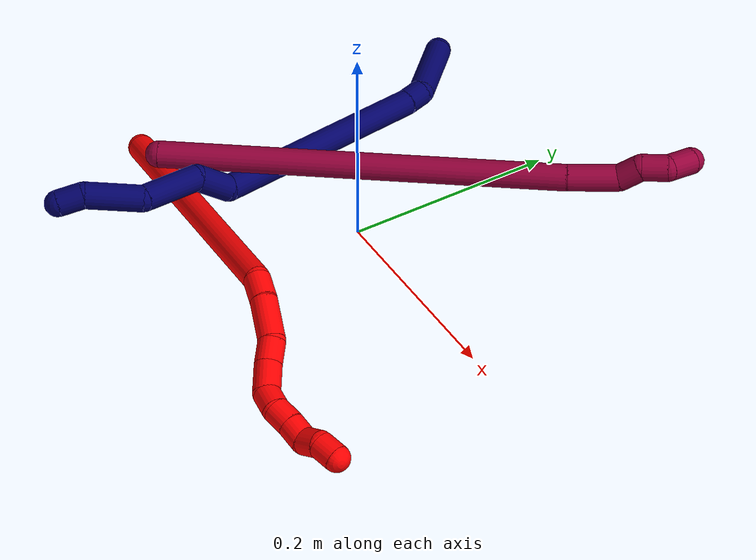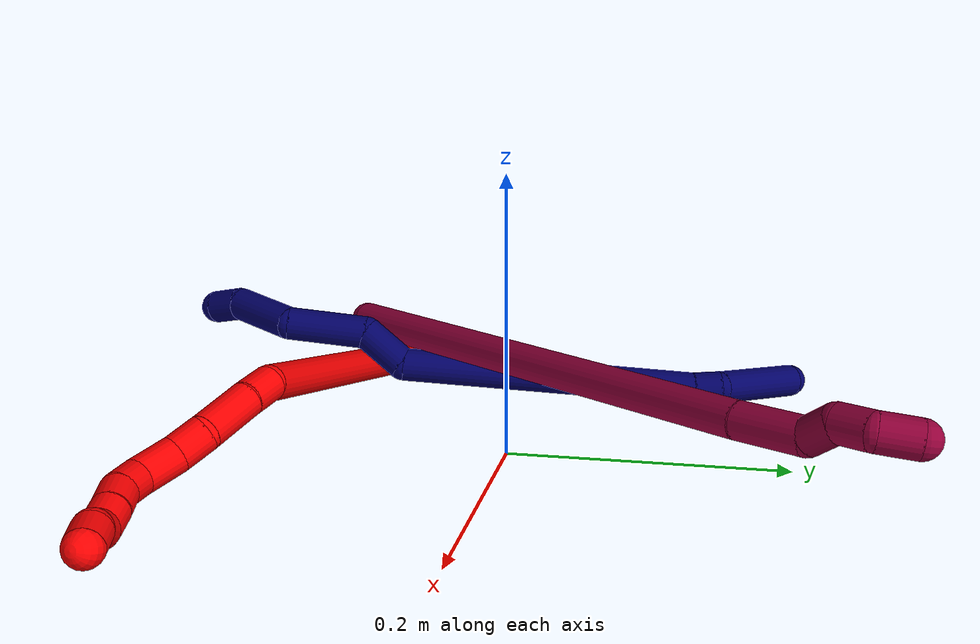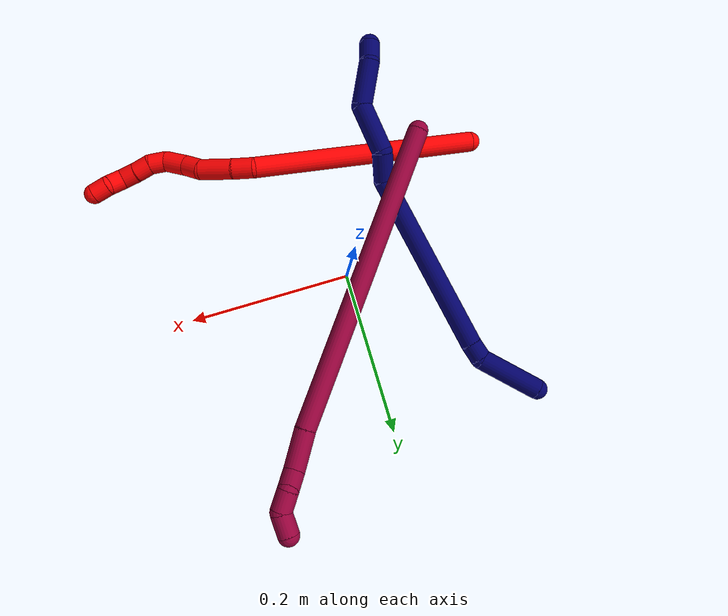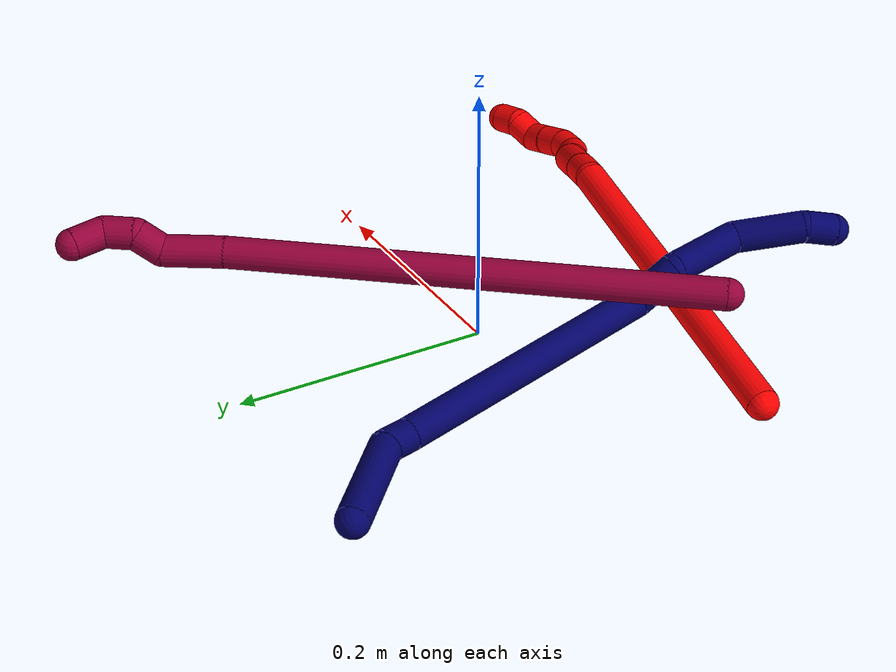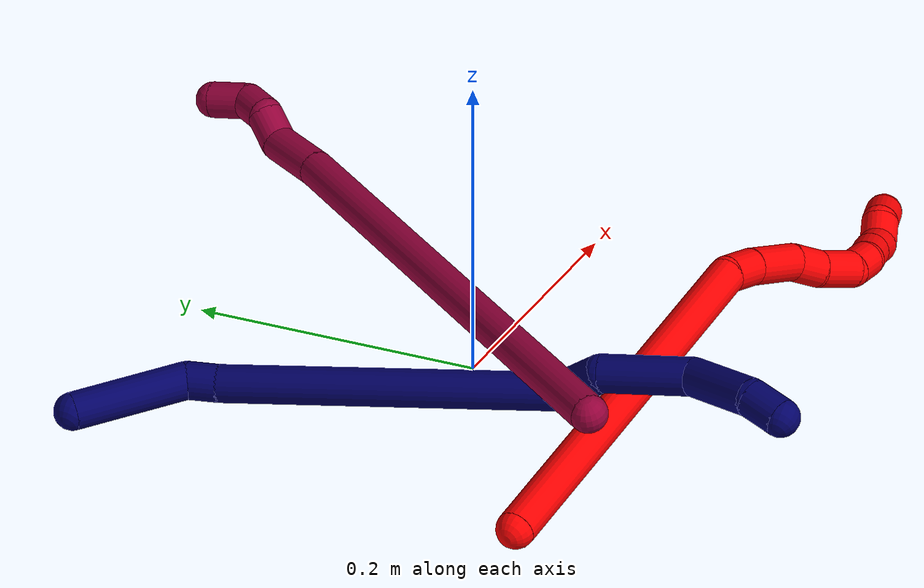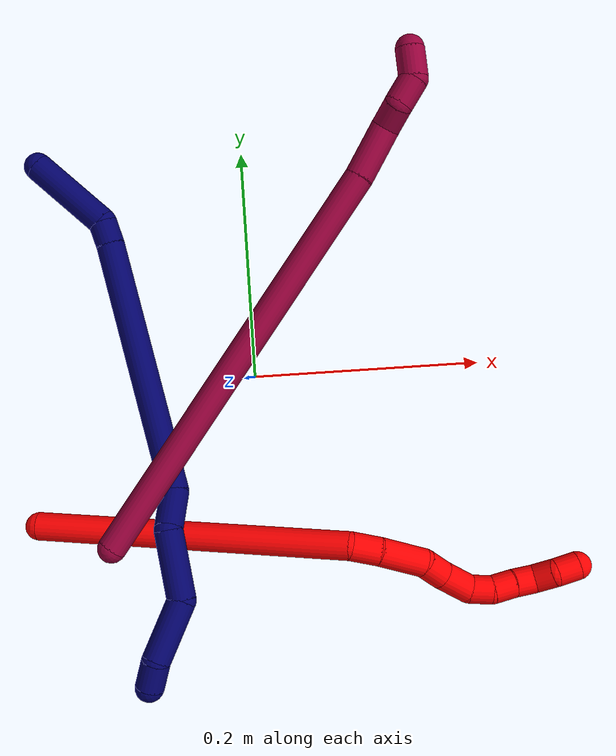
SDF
<sdf version="1.7">
 <world name="default">
  <model name="2">
   <static>0</static>
   <link name="2">
    <collision name="collision-cylinder-e_1_1_4">
     <pose>0.005912 0.002367 0.139723 -0.016939 0.042278 -0.000358</pose>
     <geometry><cylinder><radius>0.0125</radius><length>0.279735</length></cylinder></geometry>
     <surface>
      <friction><ode><mu>1.16</mu><mu2>1.16</mu2><slip1>0</slip1><slip2>0</slip2></ode></friction>
      <contact><ode><kp>1e+06</kp><kd>1</kd><max_vel>0</max_vel><min_depth>0.001</min_depth></ode></contact>
     </surface>
    </collision>
    <visual name="visual-cylinder-e_1_1_4">
     <pose>0.005912 0.002367 0.139723 -0.016939 0.042278 -0.000358</pose>
     <geometry><cylinder><radius>0.0125</radius><length>0.279735</length></cylinder></geometry>
     <material><ambient>1 0 0 1</ambient></material>
    </visual>
    <collision name="collision-cylinder-e_2_4_5">
     <pose>0.015129 0.000818 0.291206 0.321456 0.260605 0.042485</pose>
     <geometry><cylinder><radius>0.0125</radius><length>0.025657</length></cylinder></geometry>
     <surface>
      <friction><ode><mu>1.16</mu><mu2>1.16</mu2><slip1>0</slip1><slip2>0</slip2></ode></friction>
      <contact><ode><kp>1e+06</kp><kd>1</kd><max_vel>0</max_vel><min_depth>0.001</min_depth></ode></contact>
     </surface>
    </collision>
    <visual name="visual-cylinder-e_2_4_5">
     <pose>0.015129 0.000818 0.291206 0.321456 0.260605 0.042485</pose>
     <geometry><cylinder><radius>0.0125</radius><length>0.025657</length></cylinder></geometry>
     <material><ambient>1 0 0 1</ambient></material>
    </visual>
    <collision name="collision-cylinder-e_3_5_6">
     <pose>0.024793 -0.011688 0.321013 0.44421 0.308008 0.070084</pose>
     <geometry><cylinder><radius>0.0125</radius><length>0.041948</length></cylinder></geometry>
     <surface>
      <friction><ode><mu>1.16</mu><mu2>1.16</mu2><slip1>0</slip1><slip2>0</slip2></ode></friction>
      <contact><ode><kp>1e+06</kp><kd>1</kd><max_vel>0</max_vel><min_depth>0.001</min_depth></ode></contact>
     </surface>
    </collision>
    <visual name="visual-cylinder-e_3_5_6">
     <pose>0.024793 -0.011688 0.321013 0.44421 0.308008 0.070084</pose>
     <geometry><cylinder><radius>0.0125</radius><length>0.041948</length></cylinder></geometry>
     <material><ambient>1 0 0 1</ambient></material>
    </visual>
    <collision name="collision-cylinder-e_4_6_7">
     <pose>0.034208 -0.028264 0.346561 0.816785 0.272066 0.118322</pose>
     <geometry><cylinder><radius>0.0125</radius><length>0.02275</length></cylinder></geometry>
     <surface>
      <friction><ode><mu>1.16</mu><mu2>1.16</mu2><slip1>0</slip1><slip2>0</slip2></ode></friction>
      <contact><ode><kp>1e+06</kp><kd>1</kd><max_vel>0</max_vel><min_depth>0.001</min_depth></ode></contact>
     </surface>
    </collision>
    <visual name="visual-cylinder-e_4_6_7">
     <pose>0.034208 -0.028264 0.346561 0.816785 0.272066 0.118322</pose>
     <geometry><cylinder><radius>0.0125</radius><length>0.02275</length></cylinder></geometry>
     <material><ambient>1 0 0 1</ambient></material>
    </visual>
    <collision name="collision-cylinder-e_5_7_8">
     <pose>0.040058 -0.044677 0.365409 0.638722 0.195115 0.064704</pose>
     <geometry><cylinder><radius>0.0125</radius><length>0.028816</length></cylinder></geometry>
     <surface>
      <friction><ode><mu>1.16</mu><mu2>1.16</mu2><slip1>0</slip1><slip2>0</slip2></ode></friction>
      <contact><ode><kp>1e+06</kp><kd>1</kd><max_vel>0</max_vel><min_depth>0.001</min_depth></ode></contact>
     </surface>
    </collision>
    <visual name="visual-cylinder-e_5_7_8">
     <pose>0.040058 -0.044677 0.365409 0.638722 0.195115 0.064704</pose>
     <geometry><cylinder><radius>0.0125</radius><length>0.028816</length></cylinder></geometry>
     <material><ambient>1 0 0 1</ambient></material>
    </visual>
    <collision name="collision-cylinder-e_6_8_9">
     <pose>0.045404 -0.054377 0.386483 0.130204 0.254606 0.016689</pose>
     <geometry><cylinder><radius>0.0125</radius><length>0.020271</length></cylinder></geometry>
     <surface>
      <friction><ode><mu>1.16</mu><mu2>1.16</mu2><slip1>0</slip1><slip2>0</slip2></ode></friction>
      <contact><ode><kp>1e+06</kp><kd>1</kd><max_vel>0</max_vel><min_depth>0.001</min_depth></ode></contact>
     </surface>
    </collision>
    <visual name="visual-cylinder-e_6_8_9">
     <pose>0.045404 -0.054377 0.386483 0.130204 0.254606 0.016689</pose>
     <geometry><cylinder><radius>0.0125</radius><length>0.020271</length></cylinder></geometry>
     <material><ambient>1 0 0 1</ambient></material>
    </visual>
    <collision name="collision-cylinder-e_7_9_10">
     <pose>0.052974 -0.054838 0.405013 -0.092019 0.516129 -0.024304</pose>
     <geometry><cylinder><radius>0.0125</radius><length>0.020333</length></cylinder></geometry>
     <surface>
      <friction><ode><mu>1.16</mu><mu2>1.16</mu2><slip1>0</slip1><slip2>0</slip2></ode></friction>
      <contact><ode><kp>1e+06</kp><kd>1</kd><max_vel>0</max_vel><min_depth>0.001</min_depth></ode></contact>
     </surface>
    </collision>
    <visual name="visual-cylinder-e_7_9_10">
     <pose>0.052974 -0.054838 0.405013 -0.092019 0.516129 -0.024304</pose>
     <geometry><cylinder><radius>0.0125</radius><length>0.020333</length></cylinder></geometry>
     <material><ambient>1 0 0 1</ambient></material>
    </visual>
    <collision name="collision-cylinder-e_8_10_11">
     <pose>0.062901 -0.054158 0.42261 0.015084 0.509243 0.003926</pose>
     <geometry><cylinder><radius>0.0125</radius><length>0.020142</length></cylinder></geometry>
     <surface>
      <friction><ode><mu>1.16</mu><mu2>1.16</mu2><slip1>0</slip1><slip2>0</slip2></ode></friction>
      <contact><ode><kp>1e+06</kp><kd>1</kd><max_vel>0</max_vel><min_depth>0.001</min_depth></ode></contact>
     </surface>
    </collision>
    <visual name="visual-cylinder-e_8_10_11">
     <pose>0.062901 -0.054158 0.42261 0.015084 0.509243 0.003926</pose>
     <geometry><cylinder><radius>0.0125</radius><length>0.020142</length></cylinder></geometry>
     <material><ambient>1 0 0 1</ambient></material>
    </visual>
    <collision name="collision-cylinder-e_9_11_12">
     <pose>0.068097 -0.049895 0.440442 -0.452663 0.028474 -0.006557</pose>
     <geometry><cylinder><radius>0.0125</radius><length>0.020112</length></cylinder></geometry>
     <surface>
      <friction><ode><mu>1.16</mu><mu2>1.16</mu2><slip1>0</slip1><slip2>0</slip2></ode></friction>
      <contact><ode><kp>1e+06</kp><kd>1</kd><max_vel>0</max_vel><min_depth>0.001</min_depth></ode></contact>
     </surface>
    </collision>
    <visual name="visual-cylinder-e_9_11_12">
     <pose>0.068097 -0.049895 0.440442 -0.452663 0.028474 -0.006557</pose>
     <geometry><cylinder><radius>0.0125</radius><length>0.020112</length></cylinder></geometry>
     <material><ambient>1 0 0 1</ambient></material>
    </visual>
    <collision name="collision-cylinder-e_10_12_2">
     <pose>0.072939 -0.043949 0.458382 -0.172319 0.467061 -0.041085</pose>
     <geometry><cylinder><radius>0.0125</radius><length>0.020236</length></cylinder></geometry>
     <surface>
      <friction><ode><mu>1.16</mu><mu2>1.16</mu2><slip1>0</slip1><slip2>0</slip2></ode></friction>
      <contact><ode><kp>1e+06</kp><kd>1</kd><max_vel>0</max_vel><min_depth>0.001</min_depth></ode></contact>
     </surface>
    </collision>
    <visual name="visual-cylinder-e_10_12_2">
     <pose>0.072939 -0.043949 0.458382 -0.172319 0.467061 -0.041085</pose>
     <geometry><cylinder><radius>0.0125</radius><length>0.020236</length></cylinder></geometry>
     <material><ambient>1 0 0 1</ambient></material>
    </visual>
    <collision name="collision-sphere-2">
     <pose>0.077495 -0.0424 0.467283 0 -0 0</pose>
     <geometry><sphere><radius>0.0125</radius></sphere></geometry>
     <surface>
      <friction><ode><mu>1.16</mu><mu2>1.16</mu2><slip1>0</slip1><slip2>0</slip2></ode></friction>
      <contact><ode><kp>1e+06</kp><kd>1</kd><max_vel>0</max_vel><min_depth>0.001</min_depth></ode></contact>
     </surface>
    </collision>
    <visual name="visual-sphere-2">
     <pose>0.077495 -0.0424 0.467283 0 -0 0</pose>
     <geometry><sphere><radius>0.0125</radius></sphere></geometry>
     <material><ambient>1 0 0 1</ambient></material>
    </visual>
    <collision name="collision-sphere-12">
     <pose>0.068384 -0.045498 0.449482 0 -0 0</pose>
     <geometry><sphere><radius>0.0125</radius></sphere></geometry>
     <surface>
      <friction><ode><mu>1.16</mu><mu2>1.16</mu2><slip1>0</slip1><slip2>0</slip2></ode></friction>
      <contact><ode><kp>1e+06</kp><kd>1</kd><max_vel>0</max_vel><min_depth>0.001</min_depth></ode></contact>
     </surface>
    </collision>
    <visual name="visual-sphere-12">
     <pose>0.068384 -0.045498 0.449482 0 -0 0</pose>
     <geometry><sphere><radius>0.0125</radius></sphere></geometry>
     <material><ambient>1 0 0 1</ambient></material>
    </visual>
    <collision name="collision-sphere-11">
     <pose>0.067811 -0.054291 0.431403 0 -0 0</pose>
     <geometry><sphere><radius>0.0125</radius></sphere></geometry>
     <surface>
      <friction><ode><mu>1.16</mu><mu2>1.16</mu2><slip1>0</slip1><slip2>0</slip2></ode></friction>
      <contact><ode><kp>1e+06</kp><kd>1</kd><max_vel>0</max_vel><min_depth>0.001</min_depth></ode></contact>
     </surface>
    </collision>
    <visual name="visual-sphere-11">
     <pose>0.067811 -0.054291 0.431403 0 -0 0</pose>
     <geometry><sphere><radius>0.0125</radius></sphere></geometry>
     <material><ambient>1 0 0 1</ambient></material>
    </visual>
    <collision name="collision-sphere-10">
     <pose>0.057991 -0.054026 0.413818 0 -0 0</pose>
     <geometry><sphere><radius>0.0125</radius></sphere></geometry>
     <surface>
      <friction><ode><mu>1.16</mu><mu2>1.16</mu2><slip1>0</slip1><slip2>0</slip2></ode></friction>
      <contact><ode><kp>1e+06</kp><kd>1</kd><max_vel>0</max_vel><min_depth>0.001</min_depth></ode></contact>
     </surface>
    </collision>
    <visual name="visual-sphere-10">
     <pose>0.057991 -0.054026 0.413818 0 -0 0</pose>
     <geometry><sphere><radius>0.0125</radius></sphere></geometry>
     <material><ambient>1 0 0 1</ambient></material>
    </visual>
    <collision name="collision-sphere-9">
     <pose>0.047957 -0.055651 0.396209 0 -0 0</pose>
     <geometry><sphere><radius>0.0125</radius></sphere></geometry>
     <surface>
      <friction><ode><mu>1.16</mu><mu2>1.16</mu2><slip1>0</slip1><slip2>0</slip2></ode></friction>
      <contact><ode><kp>1e+06</kp><kd>1</kd><max_vel>0</max_vel><min_depth>0.001</min_depth></ode></contact>
     </surface>
    </collision>
    <visual name="visual-sphere-9">
     <pose>0.047957 -0.055651 0.396209 0 -0 0</pose>
     <geometry><sphere><radius>0.0125</radius></sphere></geometry>
     <material><ambient>1 0 0 1</ambient></material>
    </visual>
    <collision name="collision-sphere-4">
     <pose>0.011823 0.004734 0.279445 0 -0 0</pose>
     <geometry><sphere><radius>0.0125</radius></sphere></geometry>
     <surface>
      <friction><ode><mu>1.16</mu><mu2>1.16</mu2><slip1>0</slip1><slip2>0</slip2></ode></friction>
      <contact><ode><kp>1e+06</kp><kd>1</kd><max_vel>0</max_vel><min_depth>0.001</min_depth></ode></contact>
     </surface>
    </collision>
    <visual name="visual-sphere-4">
     <pose>0.011823 0.004734 0.279445 0 -0 0</pose>
     <geometry><sphere><radius>0.0125</radius></sphere></geometry>
     <material><ambient>1 0 0 1</ambient></material>
    </visual>
    <collision name="collision-sphere-1">
     <geometry><sphere><radius>0.0125</radius></sphere></geometry>
     <surface>
      <friction><ode><mu>1.16</mu><mu2>1.16</mu2><slip1>0</slip1><slip2>0</slip2></ode></friction>
      <contact><ode><kp>1e+06</kp><kd>1</kd><max_vel>0</max_vel><min_depth>0.001</min_depth></ode></contact>
     </surface>
    </collision>
    <visual name="visual-sphere-1">
     <geometry><sphere><radius>0.0125</radius></sphere></geometry>
     <material><ambient>1 0 0 1</ambient></material>
    </visual>
    <collision name="collision-sphere-8">
     <pose>0.042851 -0.053104 0.376757 0 -0 0</pose>
     <geometry><sphere><radius>0.0125</radius></sphere></geometry>
     <surface>
      <friction><ode><mu>1.16</mu><mu2>1.16</mu2><slip1>0</slip1><slip2>0</slip2></ode></friction>
      <contact><ode><kp>1e+06</kp><kd>1</kd><max_vel>0</max_vel><min_depth>0.001</min_depth></ode></contact>
     </surface>
    </collision>
    <visual name="visual-sphere-8">
     <pose>0.042851 -0.053104 0.376757 0 -0 0</pose>
     <geometry><sphere><radius>0.0125</radius></sphere></geometry>
     <material><ambient>1 0 0 1</ambient></material>
    </visual>
    <collision name="collision-sphere-5">
     <pose>0.018434 -0.003099 0.302966 0 -0 0</pose>
     <geometry><sphere><radius>0.0125</radius></sphere></geometry>
     <surface>
      <friction><ode><mu>1.16</mu><mu2>1.16</mu2><slip1>0</slip1><slip2>0</slip2></ode></friction>
      <contact><ode><kp>1e+06</kp><kd>1</kd><max_vel>0</max_vel><min_depth>0.001</min_depth></ode></contact>
     </surface>
    </collision>
    <visual name="visual-sphere-5">
     <pose>0.018434 -0.003099 0.302966 0 -0 0</pose>
     <geometry><sphere><radius>0.0125</radius></sphere></geometry>
     <material><ambient>1 0 0 1</ambient></material>
    </visual>
    <collision name="collision-sphere-6">
     <pose>0.031151 -0.020277 0.33906 0 -0 0</pose>
     <geometry><sphere><radius>0.0125</radius></sphere></geometry>
     <surface>
      <friction><ode><mu>1.16</mu><mu2>1.16</mu2><slip1>0</slip1><slip2>0</slip2></ode></friction>
      <contact><ode><kp>1e+06</kp><kd>1</kd><max_vel>0</max_vel><min_depth>0.001</min_depth></ode></contact>
     </surface>
    </collision>
    <visual name="visual-sphere-6">
     <pose>0.031151 -0.020277 0.33906 0 -0 0</pose>
     <geometry><sphere><radius>0.0125</radius></sphere></geometry>
     <material><ambient>1 0 0 1</ambient></material>
    </visual>
    <collision name="collision-sphere-7">
     <pose>0.037264 -0.036251 0.354061 0 -0 0</pose>
     <geometry><sphere><radius>0.0125</radius></sphere></geometry>
     <surface>
      <friction><ode><mu>1.16</mu><mu2>1.16</mu2><slip1>0</slip1><slip2>0</slip2></ode></friction>
      <contact><ode><kp>1e+06</kp><kd>1</kd><max_vel>0</max_vel><min_depth>0.001</min_depth></ode></contact>
     </surface>
    </collision>
    <visual name="visual-sphere-7">
     <pose>0.037264 -0.036251 0.354061 0 -0 0</pose>
     <geometry><sphere><radius>0.0125</radius></sphere></geometry>
     <material><ambient>1 0 0 1</ambient></material>
    </visual>
    <inertial>
     <pose>0.022249 -0.013877 0.242305 0 -0 0</pose>
     <mass>0.5</mass>
     <inertia>
      <ixx>0.001861</ixx>
      <ixy>0</ixy>
      <ixz>0</ixz>
      <iyy>0.001852</iyy>
      <iyz>0</iyz>
      <izz>-7.2e-05</izz>
     </inertia>
    </inertial>
   </link>
   <pose>-0.199398 -0.120251 0.011499 1.14497 1.00254 1.06858</pose>
  </model>
  <model name="7">
   <static>0</static>
   <link name="7">
    <collision name="collision-cylinder-e_1_1_4">
     <pose>-0.0017 -0.027714 -0.026772 2.33891 -0.044095 -0.103829</pose>
     <geometry><cylinder><radius>0.0125</radius><length>0.077142</length></cylinder></geometry>
     <surface>
      <friction><ode><mu>1.16</mu><mu2>1.16</mu2><slip1>0</slip1><slip2>0</slip2></ode></friction>
      <contact><ode><kp>1e+06</kp><kd>1</kd><max_vel>0</max_vel><min_depth>0.001</min_depth></ode></contact>
     </surface>
    </collision>
    <visual name="visual-cylinder-e_1_1_4">
     <pose>-0.0017 -0.027714 -0.026772 2.33891 -0.044095 -0.103829</pose>
     <geometry><cylinder><radius>0.0125</radius><length>0.077142</length></cylinder></geometry>
     <material><ambient>0.003922 0 0.403922 1</ambient></material>
    </visual>
    <collision name="collision-cylinder-e_2_4_5">
     <pose>-0.001761 -0.065565 -0.056246 1.83128 0.154979 0.201419</pose>
     <geometry><cylinder><radius>0.0125</radius><length>0.021236</length></cylinder></geometry>
     <surface>
      <friction><ode><mu>1.16</mu><mu2>1.16</mu2><slip1>0</slip1><slip2>0</slip2></ode></friction>
      <contact><ode><kp>1e+06</kp><kd>1</kd><max_vel>0</max_vel><min_depth>0.001</min_depth></ode></contact>
     </surface>
    </collision>
    <visual name="visual-cylinder-e_2_4_5">
     <pose>-0.001761 -0.065565 -0.056246 1.83128 0.154979 0.201419</pose>
     <geometry><cylinder><radius>0.0125</radius><length>0.021236</length></cylinder></geometry>
     <material><ambient>0.003922 0 0.403922 1</ambient></material>
    </visual>
    <collision name="collision-cylinder-e_3_5_6">
     <pose>0.032042 -0.179487 -0.087841 1.84231 0.290134 0.379998</pose>
     <geometry><cylinder><radius>0.0125</radius><length>0.224861</length></cylinder></geometry>
     <surface>
      <friction><ode><mu>1.16</mu><mu2>1.16</mu2><slip1>0</slip1><slip2>0</slip2></ode></friction>
      <contact><ode><kp>1e+06</kp><kd>1</kd><max_vel>0</max_vel><min_depth>0.001</min_depth></ode></contact>
     </surface>
    </collision>
    <visual name="visual-cylinder-e_3_5_6">
     <pose>0.032042 -0.179487 -0.087841 1.84231 0.290134 0.379998</pose>
     <geometry><cylinder><radius>0.0125</radius><length>0.224861</length></cylinder></geometry>
     <material><ambient>0.003922 0 0.403922 1</ambient></material>
    </visual>
    <collision name="collision-cylinder-e_4_6_7">
     <pose>0.079281 -0.294029 -0.120615 1.91717 0.921773 1.23098</pose>
     <geometry><cylinder><radius>0.0125</radius><length>0.037844</length></cylinder></geometry>
     <surface>
      <friction><ode><mu>1.16</mu><mu2>1.16</mu2><slip1>0</slip1><slip2>0</slip2></ode></friction>
      <contact><ode><kp>1e+06</kp><kd>1</kd><max_vel>0</max_vel><min_depth>0.001</min_depth></ode></contact>
     </surface>
    </collision>
    <visual name="visual-cylinder-e_4_6_7">
     <pose>0.079281 -0.294029 -0.120615 1.91717 0.921773 1.23098</pose>
     <geometry><cylinder><radius>0.0125</radius><length>0.037844</length></cylinder></geometry>
     <material><ambient>0.003922 0 0.403922 1</ambient></material>
    </visual>
    <collision name="collision-cylinder-e_5_7_8">
     <pose>0.10441 -0.332371 -0.130848 1.79705 0.341319 0.426447</pose>
     <geometry><cylinder><radius>0.0125</radius><length>0.060079</length></cylinder></geometry>
     <surface>
      <friction><ode><mu>1.16</mu><mu2>1.16</mu2><slip1>0</slip1><slip2>0</slip2></ode></friction>
      <contact><ode><kp>1e+06</kp><kd>1</kd><max_vel>0</max_vel><min_depth>0.001</min_depth></ode></contact>
     </surface>
    </collision>
    <visual name="visual-cylinder-e_5_7_8">
     <pose>0.10441 -0.332371 -0.130848 1.79705 0.341319 0.426447</pose>
     <geometry><cylinder><radius>0.0125</radius><length>0.060079</length></cylinder></geometry>
     <material><ambient>0.003922 0 0.403922 1</ambient></material>
    </visual>
    <collision name="collision-cylinder-e_6_8_9">
     <pose>0.130947 -0.380247 -0.129629 1.21374 0.650535 0.45999</pose>
     <geometry><cylinder><radius>0.0125</radius><length>0.05443</length></cylinder></geometry>
     <surface>
      <friction><ode><mu>1.16</mu><mu2>1.16</mu2><slip1>0</slip1><slip2>0</slip2></ode></friction>
      <contact><ode><kp>1e+06</kp><kd>1</kd><max_vel>0</max_vel><min_depth>0.001</min_depth></ode></contact>
     </surface>
    </collision>
    <visual name="visual-cylinder-e_6_8_9">
     <pose>0.130947 -0.380247 -0.129629 1.21374 0.650535 0.45999</pose>
     <geometry><cylinder><radius>0.0125</radius><length>0.05443</length></cylinder></geometry>
     <material><ambient>0.003922 0 0.403922 1</ambient></material>
    </visual>
    <collision name="collision-cylinder-e_7_9_2">
     <pose>0.150643 -0.411592 -0.118007 1.21945 0.266504 0.186721</pose>
     <geometry><cylinder><radius>0.0125</radius><length>0.024409</length></cylinder></geometry>
     <surface>
      <friction><ode><mu>1.16</mu><mu2>1.16</mu2><slip1>0</slip1><slip2>0</slip2></ode></friction>
      <contact><ode><kp>1e+06</kp><kd>1</kd><max_vel>0</max_vel><min_depth>0.001</min_depth></ode></contact>
     </surface>
    </collision>
    <visual name="visual-cylinder-e_7_9_2">
     <pose>0.150643 -0.411592 -0.118007 1.21945 0.266504 0.186721</pose>
     <geometry><cylinder><radius>0.0125</radius><length>0.024409</length></cylinder></geometry>
     <material><ambient>0.003922 0 0.403922 1</ambient></material>
    </visual>
    <collision name="collision-sphere-2">
     <pose>0.153857 -0.422646 -0.113955 0 -0 0</pose>
     <geometry><sphere><radius>0.0125</radius></sphere></geometry>
     <surface>
      <friction><ode><mu>1.16</mu><mu2>1.16</mu2><slip1>0</slip1><slip2>0</slip2></ode></friction>
      <contact><ode><kp>1e+06</kp><kd>1</kd><max_vel>0</max_vel><min_depth>0.001</min_depth></ode></contact>
     </surface>
    </collision>
    <visual name="visual-sphere-2">
     <pose>0.153857 -0.422646 -0.113955 0 -0 0</pose>
     <geometry><sphere><radius>0.0125</radius></sphere></geometry>
     <material><ambient>0.003922 0 0.403922 1</ambient></material>
    </visual>
    <collision name="collision-sphere-9">
     <pose>0.147429 -0.400538 -0.122059 0 -0 0</pose>
     <geometry><sphere><radius>0.0125</radius></sphere></geometry>
     <surface>
      <friction><ode><mu>1.16</mu><mu2>1.16</mu2><slip1>0</slip1><slip2>0</slip2></ode></friction>
      <contact><ode><kp>1e+06</kp><kd>1</kd><max_vel>0</max_vel><min_depth>0.001</min_depth></ode></contact>
     </surface>
    </collision>
    <visual name="visual-sphere-9">
     <pose>0.147429 -0.400538 -0.122059 0 -0 0</pose>
     <geometry><sphere><radius>0.0125</radius></sphere></geometry>
     <material><ambient>0.003922 0 0.403922 1</ambient></material>
    </visual>
    <collision name="collision-sphere-4">
     <pose>-0.0034 -0.055428 -0.053545 0 -0 0</pose>
     <geometry><sphere><radius>0.0125</radius></sphere></geometry>
     <surface>
      <friction><ode><mu>1.16</mu><mu2>1.16</mu2><slip1>0</slip1><slip2>0</slip2></ode></friction>
      <contact><ode><kp>1e+06</kp><kd>1</kd><max_vel>0</max_vel><min_depth>0.001</min_depth></ode></contact>
     </surface>
    </collision>
    <visual name="visual-sphere-4">
     <pose>-0.0034 -0.055428 -0.053545 0 -0 0</pose>
     <geometry><sphere><radius>0.0125</radius></sphere></geometry>
     <material><ambient>0.003922 0 0.403922 1</ambient></material>
    </visual>
    <collision name="collision-sphere-1">
     <geometry><sphere><radius>0.0125</radius></sphere></geometry>
     <surface>
      <friction><ode><mu>1.16</mu><mu2>1.16</mu2><slip1>0</slip1><slip2>0</slip2></ode></friction>
      <contact><ode><kp>1e+06</kp><kd>1</kd><max_vel>0</max_vel><min_depth>0.001</min_depth></ode></contact>
     </surface>
    </collision>
    <visual name="visual-sphere-1">
     <geometry><sphere><radius>0.0125</radius></sphere></geometry>
     <material><ambient>0.003922 0 0.403922 1</ambient></material>
    </visual>
    <collision name="collision-sphere-8">
     <pose>0.114465 -0.359956 -0.137198 0 -0 0</pose>
     <geometry><sphere><radius>0.0125</radius></sphere></geometry>
     <surface>
      <friction><ode><mu>1.16</mu><mu2>1.16</mu2><slip1>0</slip1><slip2>0</slip2></ode></friction>
      <contact><ode><kp>1e+06</kp><kd>1</kd><max_vel>0</max_vel><min_depth>0.001</min_depth></ode></contact>
     </surface>
    </collision>
    <visual name="visual-sphere-8">
     <pose>0.114465 -0.359956 -0.137198 0 -0 0</pose>
     <geometry><sphere><radius>0.0125</radius></sphere></geometry>
     <material><ambient>0.003922 0 0.403922 1</ambient></material>
    </visual>
    <collision name="collision-sphere-5">
     <pose>-0.000122 -0.075702 -0.058948 0 -0 0</pose>
     <geometry><sphere><radius>0.0125</radius></sphere></geometry>
     <surface>
      <friction><ode><mu>1.16</mu><mu2>1.16</mu2><slip1>0</slip1><slip2>0</slip2></ode></friction>
      <contact><ode><kp>1e+06</kp><kd>1</kd><max_vel>0</max_vel><min_depth>0.001</min_depth></ode></contact>
     </surface>
    </collision>
    <visual name="visual-sphere-5">
     <pose>-0.000122 -0.075702 -0.058948 0 -0 0</pose>
     <geometry><sphere><radius>0.0125</radius></sphere></geometry>
     <material><ambient>0.003922 0 0.403922 1</ambient></material>
    </visual>
    <collision name="collision-sphere-6">
     <pose>0.064206 -0.283272 -0.116733 0 -0 0</pose>
     <geometry><sphere><radius>0.0125</radius></sphere></geometry>
     <surface>
      <friction><ode><mu>1.16</mu><mu2>1.16</mu2><slip1>0</slip1><slip2>0</slip2></ode></friction>
      <contact><ode><kp>1e+06</kp><kd>1</kd><max_vel>0</max_vel><min_depth>0.001</min_depth></ode></contact>
     </surface>
    </collision>
    <visual name="visual-sphere-6">
     <pose>0.064206 -0.283272 -0.116733 0 -0 0</pose>
     <geometry><sphere><radius>0.0125</radius></sphere></geometry>
     <material><ambient>0.003922 0 0.403922 1</ambient></material>
    </visual>
    <collision name="collision-sphere-7">
     <pose>0.094355 -0.304786 -0.124498 0 -0 0</pose>
     <geometry><sphere><radius>0.0125</radius></sphere></geometry>
     <surface>
      <friction><ode><mu>1.16</mu><mu2>1.16</mu2><slip1>0</slip1><slip2>0</slip2></ode></friction>
      <contact><ode><kp>1e+06</kp><kd>1</kd><max_vel>0</max_vel><min_depth>0.001</min_depth></ode></contact>
     </surface>
    </collision>
    <visual name="visual-sphere-7">
     <pose>0.094355 -0.304786 -0.124498 0 -0 0</pose>
     <geometry><sphere><radius>0.0125</radius></sphere></geometry>
     <material><ambient>0.003922 0 0.403922 1</ambient></material>
    </visual>
    <inertial>
     <pose>0.054228 -0.211457 -0.090747 0 -0 0</pose>
     <mass>0.5</mass>
     <inertia>
      <ixx>0.001291</ixx>
      <ixy>0</ixy>
      <ixz>0</ixz>
      <iyy>0.000163</iyy>
      <iyz>0</iyz>
      <izz>0.000647</izz>
     </inertia>
    </inertial>
   </link>
   <pose>-0.180095 0.198812 0.012494 2.60907 -0.960356 -2.56209</pose>
  </model>
  <model name="8">
   <static>0</static>
   <link name="8">
    <collision name="collision-cylinder-e_1_1_4">
     <pose>0.111257 0.150071 -0.028501 -1.75848 0.629497 -0.749297</pose>
     <geometry><cylinder><radius>0.0125</radius><length>0.37795</length></cylinder></geometry>
     <surface>
      <friction><ode><mu>1.16</mu><mu2>1.16</mu2><slip1>0</slip1><slip2>0</slip2></ode></friction>
      <contact><ode><kp>1e+06</kp><kd>1</kd><max_vel>0</max_vel><min_depth>0.001</min_depth></ode></contact>
     </surface>
    </collision>
    <visual name="visual-cylinder-e_1_1_4">
     <pose>0.111257 0.150071 -0.028501 -1.75848 0.629497 -0.749297</pose>
     <geometry><cylinder><radius>0.0125</radius><length>0.37795</length></cylinder></geometry>
     <material><ambient>0.584314 0 0.227451 1</ambient></material>
    </visual>
    <collision name="collision-cylinder-e_2_4_5">
     <pose>0.23473 0.320513 -0.060167 -1.72496 0.534925 -0.619225</pose>
     <geometry><cylinder><radius>0.0125</radius><length>0.047927</length></cylinder></geometry>
     <surface>
      <friction><ode><mu>1.16</mu><mu2>1.16</mu2><slip1>0</slip1><slip2>0</slip2></ode></friction>
      <contact><ode><kp>1e+06</kp><kd>1</kd><max_vel>0</max_vel><min_depth>0.001</min_depth></ode></contact>
     </surface>
    </collision>
    <visual name="visual-cylinder-e_2_4_5">
     <pose>0.23473 0.320513 -0.060167 -1.72496 0.534925 -0.619225</pose>
     <geometry><cylinder><radius>0.0125</radius><length>0.047927</length></cylinder></geometry>
     <material><ambient>0.584314 0 0.227451 1</ambient></material>
    </visual>
    <collision name="collision-cylinder-e_3_5_6">
     <pose>0.254296 0.348617 -0.058519 -1.01398 0.678982 -0.387387</pose>
     <geometry><cylinder><radius>0.0125</radius><length>0.023407</length></cylinder></geometry>
     <surface>
      <friction><ode><mu>1.16</mu><mu2>1.16</mu2><slip1>0</slip1><slip2>0</slip2></ode></friction>
      <contact><ode><kp>1e+06</kp><kd>1</kd><max_vel>0</max_vel><min_depth>0.001</min_depth></ode></contact>
     </surface>
    </collision>
    <visual name="visual-cylinder-e_3_5_6">
     <pose>0.254296 0.348617 -0.058519 -1.01398 0.678982 -0.387387</pose>
     <geometry><cylinder><radius>0.0125</radius><length>0.023407</length></cylinder></geometry>
     <material><ambient>0.584314 0 0.227451 1</ambient></material>
    </visual>
    <collision name="collision-cylinder-e_4_6_7">
     <pose>0.268422 0.3664 -0.055328 -1.73082 0.587264 -0.682405</pose>
     <geometry><cylinder><radius>0.0125</radius><length>0.024461</length></cylinder></geometry>
     <surface>
      <friction><ode><mu>1.16</mu><mu2>1.16</mu2><slip1>0</slip1><slip2>0</slip2></ode></friction>
      <contact><ode><kp>1e+06</kp><kd>1</kd><max_vel>0</max_vel><min_depth>0.001</min_depth></ode></contact>
     </surface>
    </collision>
    <visual name="visual-cylinder-e_4_6_7">
     <pose>0.268422 0.3664 -0.055328 -1.73082 0.587264 -0.682405</pose>
     <geometry><cylinder><radius>0.0125</radius><length>0.024461</length></cylinder></geometry>
     <material><ambient>0.584314 0 0.227451 1</ambient></material>
    </visual>
    <collision name="collision-cylinder-e_5_7_2">
     <pose>0.27421 0.389498 -0.058016 -1.6523 -0.075428 0.081834</pose>
     <geometry><cylinder><radius>0.0125</radius><length>0.026254</length></cylinder></geometry>
     <surface>
      <friction><ode><mu>1.16</mu><mu2>1.16</mu2><slip1>0</slip1><slip2>0</slip2></ode></friction>
      <contact><ode><kp>1e+06</kp><kd>1</kd><max_vel>0</max_vel><min_depth>0.001</min_depth></ode></contact>
     </surface>
    </collision>
    <visual name="visual-cylinder-e_5_7_2">
     <pose>0.27421 0.389498 -0.058016 -1.6523 -0.075428 0.081834</pose>
     <geometry><cylinder><radius>0.0125</radius><length>0.026254</length></cylinder></geometry>
     <material><ambient>0.584314 0 0.227451 1</ambient></material>
    </visual>
    <collision name="collision-sphere-2">
     <pose>0.273221 0.402544 -0.059082 0 -0 0</pose>
     <geometry><sphere><radius>0.0125</radius></sphere></geometry>
     <surface>
      <friction><ode><mu>1.16</mu><mu2>1.16</mu2><slip1>0</slip1><slip2>0</slip2></ode></friction>
      <contact><ode><kp>1e+06</kp><kd>1</kd><max_vel>0</max_vel><min_depth>0.001</min_depth></ode></contact>
     </surface>
    </collision>
    <visual name="visual-sphere-2">
     <pose>0.273221 0.402544 -0.059082 0 -0 0</pose>
     <geometry><sphere><radius>0.0125</radius></sphere></geometry>
     <material><ambient>0.584314 0 0.227451 1</ambient></material>
    </visual>
    <collision name="collision-sphere-7">
     <pose>0.275199 0.376451 -0.05695 0 -0 0</pose>
     <geometry><sphere><radius>0.0125</radius></sphere></geometry>
     <surface>
      <friction><ode><mu>1.16</mu><mu2>1.16</mu2><slip1>0</slip1><slip2>0</slip2></ode></friction>
      <contact><ode><kp>1e+06</kp><kd>1</kd><max_vel>0</max_vel><min_depth>0.001</min_depth></ode></contact>
     </surface>
    </collision>
    <visual name="visual-sphere-7">
     <pose>0.275199 0.376451 -0.05695 0 -0 0</pose>
     <geometry><sphere><radius>0.0125</radius></sphere></geometry>
     <material><ambient>0.584314 0 0.227451 1</ambient></material>
    </visual>
    <collision name="collision-sphere-6">
     <pose>0.261646 0.356349 -0.053705 0 -0 0</pose>
     <geometry><sphere><radius>0.0125</radius></sphere></geometry>
     <surface>
      <friction><ode><mu>1.16</mu><mu2>1.16</mu2><slip1>0</slip1><slip2>0</slip2></ode></friction>
      <contact><ode><kp>1e+06</kp><kd>1</kd><max_vel>0</max_vel><min_depth>0.001</min_depth></ode></contact>
     </surface>
    </collision>
    <visual name="visual-sphere-6">
     <pose>0.261646 0.356349 -0.053705 0 -0 0</pose>
     <geometry><sphere><radius>0.0125</radius></sphere></geometry>
     <material><ambient>0.584314 0 0.227451 1</ambient></material>
    </visual>
    <collision name="collision-sphere-5">
     <pose>0.246946 0.340884 -0.063332 0 -0 0</pose>
     <geometry><sphere><radius>0.0125</radius></sphere></geometry>
     <surface>
      <friction><ode><mu>1.16</mu><mu2>1.16</mu2><slip1>0</slip1><slip2>0</slip2></ode></friction>
      <contact><ode><kp>1e+06</kp><kd>1</kd><max_vel>0</max_vel><min_depth>0.001</min_depth></ode></contact>
     </surface>
    </collision>
    <visual name="visual-sphere-5">
     <pose>0.246946 0.340884 -0.063332 0 -0 0</pose>
     <geometry><sphere><radius>0.0125</radius></sphere></geometry>
     <material><ambient>0.584314 0 0.227451 1</ambient></material>
    </visual>
    <collision name="collision-sphere-1">
     <geometry><sphere><radius>0.0125</radius></sphere></geometry>
     <surface>
      <friction><ode><mu>1.16</mu><mu2>1.16</mu2><slip1>0</slip1><slip2>0</slip2></ode></friction>
      <contact><ode><kp>1e+06</kp><kd>1</kd><max_vel>0</max_vel><min_depth>0.001</min_depth></ode></contact>
     </surface>
    </collision>
    <visual name="visual-sphere-1">
     <geometry><sphere><radius>0.0125</radius></sphere></geometry>
     <material><ambient>0.584314 0 0.227451 1</ambient></material>
    </visual>
    <collision name="collision-sphere-4">
     <pose>0.222514 0.300142 -0.057001 0 -0 0</pose>
     <geometry><sphere><radius>0.0125</radius></sphere></geometry>
     <surface>
      <friction><ode><mu>1.16</mu><mu2>1.16</mu2><slip1>0</slip1><slip2>0</slip2></ode></friction>
      <contact><ode><kp>1e+06</kp><kd>1</kd><max_vel>0</max_vel><min_depth>0.001</min_depth></ode></contact>
     </surface>
    </collision>
    <visual name="visual-sphere-4">
     <pose>0.222514 0.300142 -0.057001 0 -0 0</pose>
     <geometry><sphere><radius>0.0125</radius></sphere></geometry>
     <material><ambient>0.584314 0 0.227451 1</ambient></material>
    </visual>
    <inertial>
     <pose>0.146034 0.198858 -0.035803 0 -0 0</pose>
     <mass>0.5</mass>
     <inertia>
      <ixx>0.000214</ixx>
      <ixy>0</ixy>
      <ixz>0</ixz>
      <iyy>-0.001296</iyy>
      <iyz>0</iyz>
      <izz>-0.00627</izz>
     </inertia>
    </inertial>
   </link>
   <pose>-0.128579 -0.137619 0.061139 -0.030323 -0.317587 0.008715</pose>
  </model>
 </world>
</sdf>
